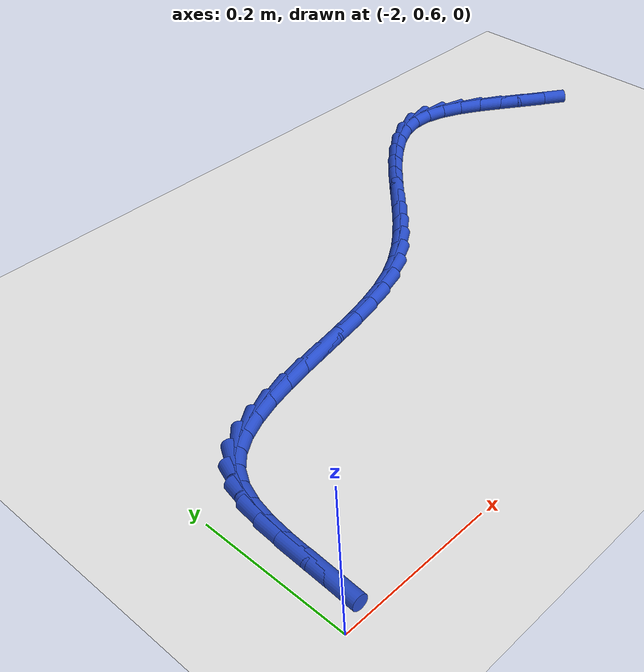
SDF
<sdf version="1.6">
 <world name="default">
  <model name="ground_plane">
   <static>1</static>
   <link name="link">
    <collision name="collision">
     <geometry><plane><normal>0 0 1</normal><size>100 100</size></plane></geometry>
     <surface><friction><ode><mu>100</mu><mu2>50</mu2></ode></friction></surface>
    </collision>
    <visual name="visual">
     <cast_shadows>0</cast_shadows>
     <geometry><plane><normal>0 0 1</normal><size>100 100</size></plane></geometry>
     <material>
      <script><uri>file://media/materials/scripts/gazebo.material</uri><name>Gazebo/WhiteGlow</name></script>
     </material>
    </visual>
   </link>
  </model>
  <model name="line">
   <link name="link_56">
    <pose>-1.0531943299261233 1.0909482657542016 0.01 0 1.57 -0.6140735378528087</pose>
    <collision name="collision">
     <geometry><cylinder><radius>0.01</radius><length>0.08</length></cylinder></geometry>
    </collision>
    <visual name="visual">
     <material>
      <script><name>Gazebo/Blue</name><uri>file://media/materials/scripts/gazebo.material</uri></script>
     </material>
     <geometry><cylinder><radius>0.01</radius><length>0.08</length></cylinder></geometry>
    </visual>
   </link>
   <link name="link_57">
    <pose>-1.0816750186736275 1.1110271404629344 0.01 0 1.57 -0.6299917456313363</pose>
    <collision name="collision">
     <geometry><cylinder><radius>0.01</radius><length>0.08</length></cylinder></geometry>
    </collision>
    <visual name="visual">
     <material>
      <script><name>Gazebo/Blue</name><uri>file://media/materials/scripts/gazebo.material</uri></script>
     </material>
     <geometry><cylinder><radius>0.01</radius><length>0.08</length></cylinder></geometry>
    </visual>
   </link>
   <link name="link_58">
    <pose>-1.1098696266326336 1.1315838879639775 0.01 0 1.57 -0.6102616202183898</pose>
    <collision name="collision">
     <geometry><cylinder><radius>0.01</radius><length>0.08</length></cylinder></geometry>
    </collision>
    <visual name="visual">
     <material>
      <script><name>Gazebo/Blue</name><uri>file://media/materials/scripts/gazebo.material</uri></script>
     </material>
     <geometry><cylinder><radius>0.01</radius><length>0.08</length></cylinder></geometry>
    </visual>
   </link>
   <link name="link_59">
    <pose>-1.1378650390342928 1.1511613136727337 0.01 0 1.57 -0.5511886259884812</pose>
    <collision name="collision">
     <geometry><cylinder><radius>0.01</radius><length>0.08</length></cylinder></geometry>
    </collision>
    <visual name="visual">
     <material>
      <script><name>Gazebo/Blue</name><uri>file://media/materials/scripts/gazebo.material</uri></script>
     </material>
     <geometry><cylinder><radius>0.01</radius><length>0.08</length></cylinder></geometry>
    </visual>
   </link>
   <link name="link_60">
    <pose>-1.165748141109753 1.168302223004603 0.01 0 1.57 -0.443881770155141</pose>
    <collision name="collision">
     <geometry><cylinder><radius>0.01</radius><length>0.08</length></cylinder></geometry>
    </collision>
    <visual name="visual">
     <material>
      <script><name>Gazebo/Blue</name><uri>file://media/materials/scripts/gazebo.material</uri></script>
     </material>
     <geometry><cylinder><radius>0.01</radius><length>0.08</length></cylinder></geometry>
    </visual>
   </link>
   <link name="link_61">
    <pose>-1.193605818090165 1.1815494213749886 0.01 0 1.57 -0.27562848375242255</pose>
    <collision name="collision">
     <geometry><cylinder><radius>0.01</radius><length>0.08</length></cylinder></geometry>
    </collision>
    <visual name="visual">
     <material>
      <script><name>Gazebo/Blue</name><uri>file://media/materials/scripts/gazebo.material</uri></script>
     </material>
     <geometry><cylinder><radius>0.01</radius><length>0.08</length></cylinder></geometry>
    </visual>
   </link>
   <link name="link_62">
    <pose>-1.2215249552066774 1.1894457141992918 0.01 0 1.57 -0.038751175619395624</pose>
    <collision name="collision">
     <geometry><cylinder><radius>0.01</radius><length>0.08</length></cylinder></geometry>
    </collision>
    <visual name="visual">
     <material>
      <script><name>Gazebo/Blue</name><uri>file://media/materials/scripts/gazebo.material</uri></script>
     </material>
     <geometry><cylinder><radius>0.01</radius><length>0.08</length></cylinder></geometry>
    </visual>
   </link>
   <link name="link_63">
    <pose>-1.249592437690441 1.1905339068929148 0.01 0 1.57 0.2420069220241617</pose>
    <collision name="collision">
     <geometry><cylinder><radius>0.01</radius><length>0.08</length></cylinder></geometry>
    </collision>
    <visual name="visual">
     <material>
      <script><name>Gazebo/Blue</name><uri>file://media/materials/scripts/gazebo.material</uri></script>
     </material>
     <geometry><cylinder><radius>0.01</radius><length>0.08</length></cylinder></geometry>
    </visual>
   </link>
   <link name="link_64">
    <pose>-1.277856012216005 1.1835571888001408 0.01 0 1.57 0.4649869453436106</pose>
    <collision name="collision">
     <geometry><cylinder><radius>0.01</radius><length>0.08</length></cylinder></geometry>
    </collision>
    <visual name="visual">
     <material>
      <script><name>Gazebo/Blue</name><uri>file://media/materials/scripts/gazebo.material</uri></script>
     </material>
     <geometry><cylinder><radius>0.01</radius><length>0.08</length></cylinder></geometry>
    </visual>
   </link>
   <link name="link_65">
    <pose>-1.305931009957357 1.169472656073266 0.01 0 1.57 0.6056995610645312</pose>
    <collision name="collision">
     <geometry><cylinder><radius>0.01</radius><length>0.08</length></cylinder></geometry>
    </collision>
    <visual name="visual">
     <material>
      <script><name>Gazebo/Blue</name><uri>file://media/materials/scripts/gazebo.material</uri></script>
     </material>
     <geometry><cylinder><radius>0.01</radius><length>0.08</length></cylinder></geometry>
    </visual>
   </link>
   <link name="link_66">
    <pose>-1.3331641405651742 1.1506127094465664 0.01 0 1.57 0.6914183590811336</pose>
    <collision name="collision">
     <geometry><cylinder><radius>0.01</radius><length>0.08</length></cylinder></geometry>
    </collision>
    <visual name="visual">
     <material>
      <script><name>Gazebo/Blue</name><uri>file://media/materials/scripts/gazebo.material</uri></script>
     </material>
     <geometry><cylinder><radius>0.01</radius><length>0.08</length></cylinder></geometry>
    </visual>
   </link>
   <link name="link_67">
    <pose>-1.3589184625712203 1.1292952540077432 0.01 0 1.57 0.7466228994218603</pose>
    <collision name="collision">
     <geometry><cylinder><radius>0.01</radius><length>0.08</length></cylinder></geometry>
    </collision>
    <visual name="visual">
     <material>
      <script><name>Gazebo/Blue</name><uri>file://media/materials/scripts/gazebo.material</uri></script>
     </material>
     <geometry><cylinder><radius>0.01</radius><length>0.08</length></cylinder></geometry>
    </visual>
   </link>
   <link name="link_68">
    <pose>-1.3830774864186108 1.106940710463152 0.01 0 1.57 0.7837222870269861</pose>
    <collision name="collision">
     <geometry><cylinder><radius>0.01</radius><length>0.08</length></cylinder></geometry>
    </collision>
    <visual name="visual">
     <material>
      <script><name>Gazebo/Blue</name><uri>file://media/materials/scripts/gazebo.material</uri></script>
     </material>
     <geometry><cylinder><radius>0.01</radius><length>0.08</length></cylinder></geometry>
    </visual>
   </link>
   <link name="link_69">
    <pose>-1.4060755950025408 1.0840195569575513 0.01 0 1.57 0.8022587887862268</pose>
    <collision name="collision">
     <geometry><cylinder><radius>0.01</radius><length>0.08</length></cylinder></geometry>
    </collision>
    <visual name="visual">
     <material>
      <script><name>Gazebo/Blue</name><uri>file://media/materials/scripts/gazebo.material</uri></script>
     </material>
     <geometry><cylinder><radius>0.01</radius><length>0.08</length></cylinder></geometry>
    </visual>
   </link>
   <link name="link_70">
    <pose>-1.4283736442885135 1.060956620603183 0.01 0 1.57 0.8014776523749807</pose>
    <collision name="collision">
     <geometry><cylinder><radius>0.01</radius><length>0.08</length></cylinder></geometry>
    </collision>
    <visual name="visual">
     <material>
      <script><name>Gazebo/Blue</name><uri>file://media/materials/scripts/gazebo.material</uri></script>
     </material>
     <geometry><cylinder><radius>0.01</radius><length>0.08</length></cylinder></geometry>
    </visual>
   </link>
   <link name="link_71">
    <pose>-1.4504324902420325 1.03817672851229 0.01 0 1.57 0.7806977238441909</pose>
    <collision name="collision">
     <geometry><cylinder><radius>0.01</radius><length>0.08</length></cylinder></geometry>
    </collision>
    <visual name="visual">
     <material>
      <script><name>Gazebo/Blue</name><uri>file://media/materials/scripts/gazebo.material</uri></script>
     </material>
     <geometry><cylinder><radius>0.01</radius><length>0.08</length></cylinder></geometry>
    </visual>
   </link>
   <link name="link_72">
    <pose>-1.4727129888286017 1.0161047077971148 0.01 0 1.57 0.7393356076015665</pose>
    <collision name="collision">
     <geometry><cylinder><radius>0.01</radius><length>0.08</length></cylinder></geometry>
    </collision>
    <visual name="visual">
     <material>
      <script><name>Gazebo/Blue</name><uri>file://media/materials/scripts/gazebo.material</uri></script>
     </material>
     <geometry><cylinder><radius>0.01</radius><length>0.08</length></cylinder></geometry>
    </visual>
   </link>
   <link name="link_73">
    <pose>-1.4956759960137236 0.9951653855698999 0.01 0 1.57 0.677182109085149</pose>
    <collision name="collision">
     <geometry><cylinder><radius>0.01</radius><length>0.08</length></cylinder></geometry>
    </collision>
    <visual name="visual">
     <material>
      <script><name>Gazebo/Blue</name><uri>file://media/materials/scripts/gazebo.material</uri></script>
     </material>
     <geometry><cylinder><radius>0.01</radius><length>0.08</length></cylinder></geometry>
    </visual>
   </link>
   <link name="link_74">
    <pose>-1.5197823677629025 0.9757835889428875 0.01 0 1.57 0.5949456043863359</pose>
    <collision name="collision">
     <geometry><cylinder><radius>0.01</radius><length>0.08</length></cylinder></geometry>
    </collision>
    <visual name="visual">
     <material>
      <script><name>Gazebo/Blue</name><uri>file://media/materials/scripts/gazebo.material</uri></script>
     </material>
     <geometry><cylinder><radius>0.01</radius><length>0.08</length></cylinder></geometry>
    </visual>
   </link>
   <link name="link_75">
    <pose>-1.5454929600416414 0.9583841450283206 0.01 0 1.57 0.49494935564509585</pose>
    <collision name="collision">
     <geometry><cylinder><radius>0.01</radius><length>0.08</length></cylinder></geometry>
    </collision>
    <visual name="visual">
     <material>
      <script><name>Gazebo/Blue</name><uri>file://media/materials/scripts/gazebo.material</uri></script>
     </material>
     <geometry><cylinder><radius>0.01</radius><length>0.08</length></cylinder></geometry>
    </visual>
   </link>
   <link name="link_76">
    <pose>-1.5732686288154432 0.943391880938441 0.01 0 1.57 0.3842600945430902</pose>
    <collision name="collision">
     <geometry><cylinder><radius>0.01</radius><length>0.08</length></cylinder></geometry>
    </collision>
    <visual name="visual">
     <material>
      <script><name>Gazebo/Blue</name><uri>file://media/materials/scripts/gazebo.material</uri></script>
     </material>
     <geometry><cylinder><radius>0.01</radius><length>0.08</length></cylinder></geometry>
    </visual>
   </link>
   <link name="link_77">
    <pose>-1.6035007900698235 0.9311671775939869 0.01 0 1.57 0.29136854394661404</pose>
    <collision name="collision">
     <geometry><cylinder><radius>0.01</radius><length>0.08</length></cylinder></geometry>
    </collision>
    <visual name="visual">
     <material>
      <script><name>Gazebo/Blue</name><uri>file://media/materials/scripts/gazebo.material</uri></script>
     </material>
     <geometry><cylinder><radius>0.01</radius><length>0.08</length></cylinder></geometry>
    </visual>
   </link>
   <link name="link_78">
    <pose>-1.6359097809001077 0.9214475977829925 0.01 0 1.57 0.22668181007756594</pose>
    <collision name="collision">
     <geometry><cylinder><radius>0.01</radius><length>0.08</length></cylinder></geometry>
    </collision>
    <visual name="visual">
     <material>
      <script><name>Gazebo/Blue</name><uri>file://media/materials/scripts/gazebo.material</uri></script>
     </material>
     <geometry><cylinder><radius>0.01</radius><length>0.08</length></cylinder></geometry>
    </visual>
   </link>
   <link name="link_79">
    <pose>-1.669839937987288 0.9136217440156812 0.01 0 1.57 0.18601313657534607</pose>
    <collision name="collision">
     <geometry><cylinder><radius>0.01</radius><length>0.08</length></cylinder></geometry>
    </collision>
    <visual name="visual">
     <material>
      <script><name>Gazebo/Blue</name><uri>file://media/materials/scripts/gazebo.material</uri></script>
     </material>
     <geometry><cylinder><radius>0.01</radius><length>0.08</length></cylinder></geometry>
    </visual>
   </link>
   <link name="link_80">
    <pose>-1.704631456238548 0.9070743748848701 0.01 0 1.57 0.16659269685502637</pose>
    <collision name="collision">
     <geometry><cylinder><radius>0.01</radius><length>0.08</length></cylinder></geometry>
    </collision>
    <visual name="visual">
     <material>
      <script><name>Gazebo/Blue</name><uri>file://media/materials/scripts/gazebo.material</uri></script>
     </material>
     <geometry><cylinder><radius>0.01</radius><length>0.08</length></cylinder></geometry>
    </visual>
   </link>
   <link name="link_81">
    <pose>-1.7396245305610751 0.9011902489833762 0.01 0 1.57 0.1674107261909408</pose>
    <collision name="collision">
     <geometry><cylinder><radius>0.01</radius><length>0.08</length></cylinder></geometry>
    </collision>
    <visual name="visual">
     <material>
      <script><name>Gazebo/Blue</name><uri>file://media/materials/scripts/gazebo.material</uri></script>
     </material>
     <geometry><cylinder><radius>0.01</radius><length>0.08</length></cylinder></geometry>
    </visual>
   </link>
   <link name="link_82">
    <pose>-1.7741593558620543 0.8953541249040167 0.01 0 1.57 0.18932624798777023</pose>
    <collision name="collision">
     <geometry><cylinder><radius>0.01</radius><length>0.08</length></cylinder></geometry>
    </collision>
    <visual name="visual">
     <material>
      <script><name>Gazebo/Blue</name><uri>file://media/materials/scripts/gazebo.material</uri></script>
     </material>
     <geometry><cylinder><radius>0.01</radius><length>0.08</length></cylinder></geometry>
    </visual>
   </link>
   <link name="link_83">
    <pose>-1.8075761270486705 0.8889507612396071 0.01 0 1.57 0.23532100203000966</pose>
    <collision name="collision">
     <geometry><cylinder><radius>0.01</radius><length>0.08</length></cylinder></geometry>
    </collision>
    <visual name="visual">
     <material>
      <script><name>Gazebo/Blue</name><uri>file://media/materials/scripts/gazebo.material</uri></script>
     </material>
     <geometry><cylinder><radius>0.01</radius><length>0.08</length></cylinder></geometry>
    </visual>
   </link>
   <link name="link_84">
    <pose>-1.839215039028109 0.8813649165829657 0.01 0 1.57 0.3109191845291761</pose>
    <collision name="collision">
     <geometry><cylinder><radius>0.01</radius><length>0.08</length></cylinder></geometry>
    </collision>
    <visual name="visual">
     <material>
      <script><name>Gazebo/Blue</name><uri>file://media/materials/scripts/gazebo.material</uri></script>
     </material>
     <geometry><cylinder><radius>0.01</radius><length>0.08</length></cylinder></geometry>
    </visual>
   </link>
   <link name="link_85">
    <pose>-1.868416286707557 0.8719813495269086 0.01 0 1.57 0.42444027043936666</pose>
    <collision name="collision">
     <geometry><cylinder><radius>0.01</radius><length>0.08</length></cylinder></geometry>
    </collision>
    <visual name="visual">
     <material>
      <script><name>Gazebo/Blue</name><uri>file://media/materials/scripts/gazebo.material</uri></script>
     </material>
     <geometry><cylinder><radius>0.01</radius><length>0.08</length></cylinder></geometry>
    </visual>
   </link>
   <link name="link_86">
    <pose>-1.8945200649941984 0.8601848186642531 0.01 0 1.57 0.5857396880508106</pose>
    <collision name="collision">
     <geometry><cylinder><radius>0.01</radius><length>0.08</length></cylinder></geometry>
    </collision>
    <visual name="visual">
     <material>
      <script><name>Gazebo/Blue</name><uri>file://media/materials/scripts/gazebo.material</uri></script>
     </material>
     <geometry><cylinder><radius>0.01</radius><length>0.08</length></cylinder></geometry>
    </visual>
   </link>
   <link name="link_87">
    <pose>-1.9168665687952193 0.8453600825878157 0.01 0 1.57 0.8001991126419197</pose>
    <collision name="collision">
     <geometry><cylinder><radius>0.01</radius><length>0.08</length></cylinder></geometry>
    </collision>
    <visual name="visual">
     <material>
      <script><name>Gazebo/Blue</name><uri>file://media/materials/scripts/gazebo.material</uri></script>
     </material>
     <geometry><cylinder><radius>0.01</radius><length>0.08</length></cylinder></geometry>
    </visual>
   </link>
   <link name="link_88">
    <pose>-1.934795993017806 0.8268918998904132 0.01 0 1.57 1.0453190058222679</pose>
    <collision name="collision">
     <geometry><cylinder><radius>0.01</radius><length>0.08</length></cylinder></geometry>
    </collision>
    <visual name="visual">
     <material>
      <script><name>Gazebo/Blue</name><uri>file://media/materials/scripts/gazebo.material</uri></script>
     </material>
     <geometry><cylinder><radius>0.01</radius><length>0.08</length></cylinder></geometry>
    </visual>
   </link>
   <link name="link_89">
    <pose>-1.9478710959562249 0.8043430874597184 0.01 0 1.57 1.2458590417414077</pose>
    <collision name="collision">
     <geometry><cylinder><radius>0.01</radius><length>0.08</length></cylinder></geometry>
    </collision>
    <visual name="visual">
     <material>
      <script><name>Gazebo/Blue</name><uri>file://media/materials/scripts/gazebo.material</uri></script>
     </material>
     <geometry><cylinder><radius>0.01</radius><length>0.08</length></cylinder></geometry>
    </visual>
   </link>
   <link name="link_90">
    <pose>-1.956705911220252 0.778117518264352 0.01 0 1.57 1.3843185221590126</pose>
    <collision name="collision">
     <geometry><cylinder><radius>0.01</radius><length>0.08</length></cylinder></geometry>
    </collision>
    <visual name="visual">
     <material>
      <script><name>Gazebo/Blue</name><uri>file://media/materials/scripts/gazebo.material</uri></script>
     </material>
     <geometry><cylinder><radius>0.01</radius><length>0.08</length></cylinder></geometry>
    </visual>
   </link>
   <link name="link_91">
    <pose>-1.9622245720225842 0.74886715552379 0.01 0 1.57 1.4722433952521154</pose>
    <collision name="collision">
     <geometry><cylinder><radius>0.01</radius><length>0.08</length></cylinder></geometry>
    </collision>
    <visual name="visual">
     <material>
      <script><name>Gazebo/Blue</name><uri>file://media/materials/scripts/gazebo.material</uri></script>
     </material>
     <geometry><cylinder><radius>0.01</radius><length>0.08</length></cylinder></geometry>
    </visual>
   </link>
   <link name="link_92">
    <pose>-1.9653512562690485 0.717243998213533 0.01 0 1.57 1.5210865945543104</pose>
    <collision name="collision">
     <geometry><cylinder><radius>0.01</radius><length>0.08</length></cylinder></geometry>
    </collision>
    <visual name="visual">
     <material>
      <script><name>Gazebo/Blue</name><uri>file://media/materials/scripts/gazebo.material</uri></script>
     </material>
     <geometry><cylinder><radius>0.01</radius><length>0.08</length></cylinder></geometry>
    </visual>
   </link>
   <link name="link_93">
    <pose>-1.9670101418654748 0.6839000453090839 0.01 0 1.57 1.538399187484819</pose>
    <collision name="collision">
     <geometry><cylinder><radius>0.01</radius><length>0.08</length></cylinder></geometry>
    </collision>
    <visual name="visual">
     <material>
      <script><name>Gazebo/Blue</name><uri>file://media/materials/scripts/gazebo.material</uri></script>
     </material>
     <geometry><cylinder><radius>0.01</radius><length>0.08</length></cylinder></geometry>
    </visual>
   </link>
   <link name="link_94">
    <pose>-1.9681254067176903 0.6494872957859437 0.01 0 1.57 1.5278757751002603</pose>
    <collision name="collision">
     <geometry><cylinder><radius>0.01</radius><length>0.08</length></cylinder></geometry>
    </collision>
    <visual name="visual">
     <material>
      <script><name>Gazebo/Blue</name><uri>file://media/materials/scripts/gazebo.material</uri></script>
     </material>
     <geometry><cylinder><radius>0.01</radius><length>0.08</length></cylinder></geometry>
    </visual>
   </link>
  </model>
 </world>
</sdf>
